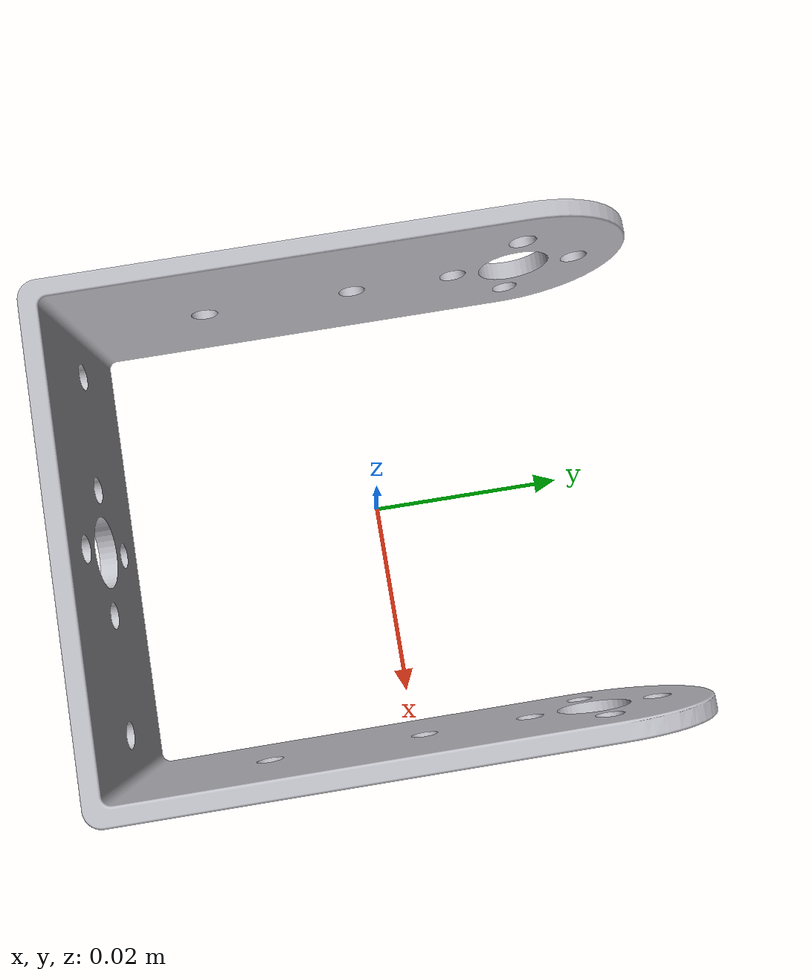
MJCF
<?xml version='1.0' encoding='utf-8'?>
<mujoco model="part_longU">
  <compiler angle="radian" meshdir="." autolimits="true"/>
  <visual>
    <global offwidth="1024" offheight="1024"/>
    <headlight ambient="0.55 0.55 0.55" diffuse="0.6 0.6 0.6" specular="0.2 0.2 0.2"/>
  </visual>
  <default>
    <default class="visual"><geom type="mesh" contype="0" conaffinity="0" group="2" density="0"/></default>
    <default class="collision"><geom type="mesh" group="3"/></default>
  </default>
  <asset>
    <mesh name="longU" file="长U支架.STL" scale="0.001 0.001 0.001"/>
    <material name="bracket" rgba="0.75 0.75 0.78 1"/>
  </asset>
  <worldbody>
    <!-- source 长U支架.STL: bbox min 0.000000 0.000000 0.001490 max 54.000000 64.500000 25.001490 mm, size 54.000000 64.500000 25.000000 mm -->
    <body name="longU">
      <geom name="longU_visual" mesh="longU" class="visual" material="bracket" pos="-0.027000 -0.032250 -0.012501"/>
      <geom name="longU_collision" mesh="longU" class="collision" pos="-0.027000 -0.032250 -0.012501" density="2700"/>
    </body>
  </worldbody>
</mujoco>
